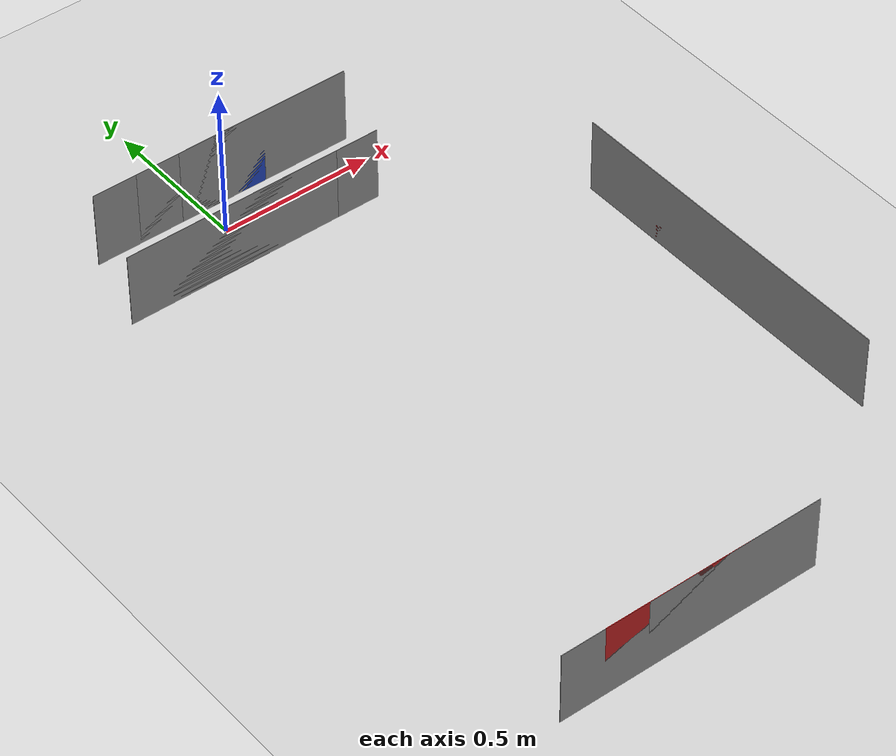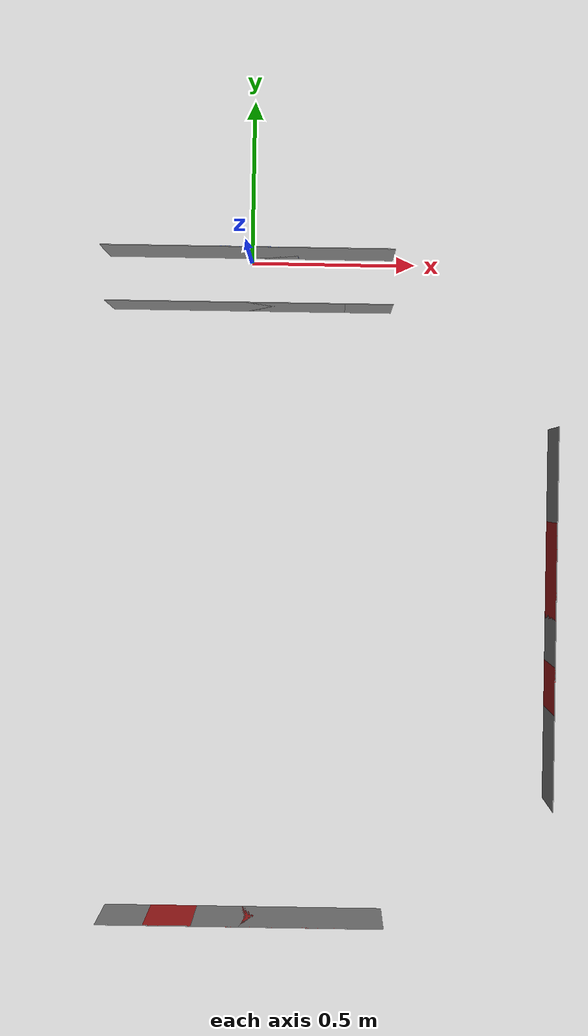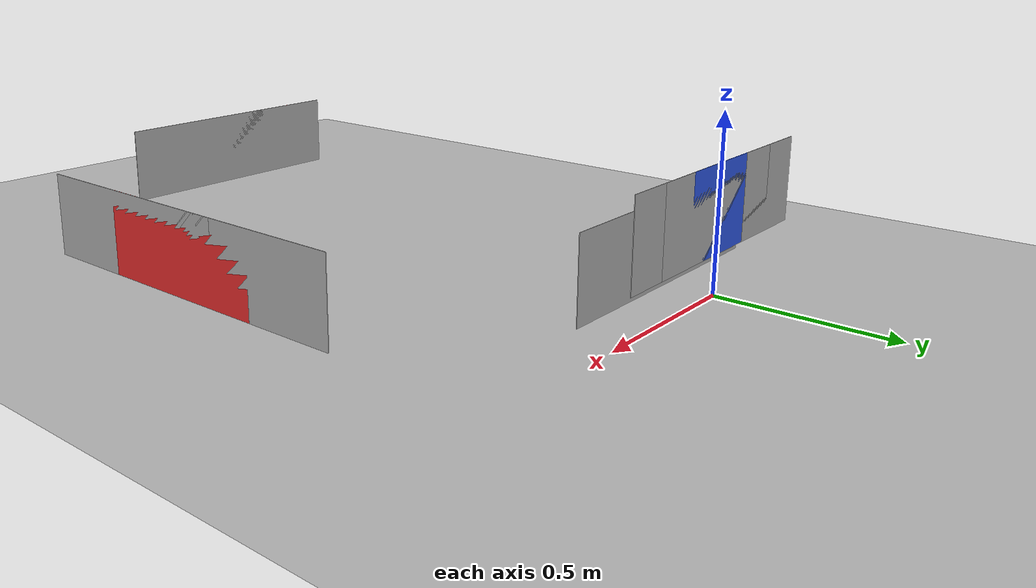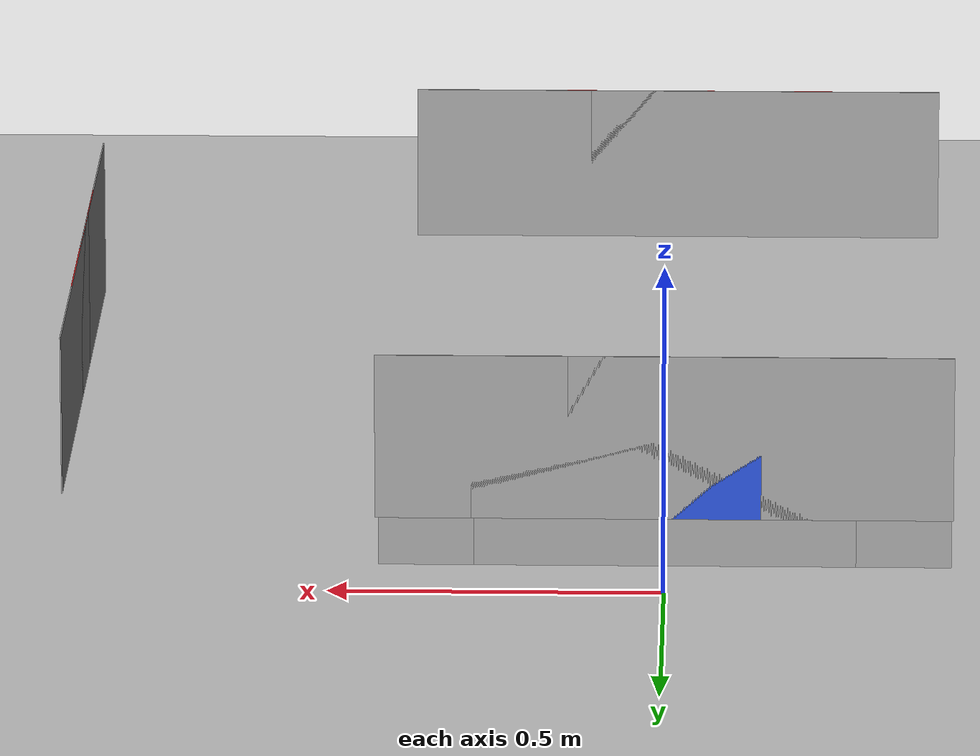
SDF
<sdf version="1.6">
 <world name="default">
  <light name="sun" type="directional">
   <pose>0 0 10 0 -0 0</pose>
   <diffuse>0.8 0.8 0.8 1</diffuse>
   <specular>0.2 0.2 0.2 1</specular>
   <attenuation>
    <range>1000</range>
    <constant>0.9</constant>
    <linear>0.01</linear>
    <quadratic>0.001</quadratic>
   </attenuation>
   <direction>-0.5 0.1 -0.9</direction>
   <spot><inner_angle>0</inner_angle><outer_angle>0</outer_angle><falloff>0</falloff></spot>
  </light>
  <model name="ground_plane">
   <static>1</static>
   <link name="link">
    <collision name="collision">
     <geometry><plane><normal>0 0 1</normal><size>100 100</size></plane></geometry>
     <surface><friction><ode><mu>100</mu><mu2>50</mu2></ode></friction></surface>
    </collision>
    <visual name="visual">
     <cast_shadows>0</cast_shadows>
     <geometry><plane><normal>0 0 1</normal><size>100 100</size></plane></geometry>
     <material>
      <script><uri>file://media/materials/scripts/gazebo.material</uri><name>Gazebo/Grey</name></script>
     </material>
    </visual>
   </link>
  </model>
  <gravity>0 0 -9.8</gravity>
  <magnetic_field>6e-06 2.3e-05 -4.2e-05</magnetic_field>
  <atmosphere type="adiabatic"/>
  <physics type="ode">
   <max_step_size>0.001</max_step_size>
   <real_time_factor>1</real_time_factor>
   <real_time_update_rate>1000</real_time_update_rate>
  </physics>
  <scene><ambient>0.4 0.4 0.4 1</ambient><background>0.7 0.7 0.7 1</background><shadows>1</shadows></scene>
  <spherical_coordinates>
   <surface_model>EARTH_WGS84</surface_model>
   <latitude_deg>0</latitude_deg>
   <longitude_deg>0</longitude_deg>
   <elevation>0</elevation>
   <heading_deg>0</heading_deg>
  </spherical_coordinates>
  <model name="Untitled">
   <link name="Wall_y_0_0">
    <collision name="Wall_y_0_0_Collision">
     <geometry><box><size>0.5714 0.002 .25</size></box></geometry>
     <pose>0 0 0.12 0 -0 0</pose>
    </collision>
    <visual name="Wall_y_0_0_Visual">
     <pose>0 0 0.12 0 -0 0</pose>
     <geometry><box><size>0.5714 0.002 .25</size></box></geometry>
     <material>
      <script><uri>file://media/materials/scripts/gazebo.material</uri><name>Gazebo/Grey</name></script>
      <ambient>1 1 1 1</ambient>
     </material>
     <meta><layer>0</layer></meta>
    </visual>
    <pose>0 0 0.12 0 -0 0</pose>
   </link>
   <link name="Wall_y_0_Door">
    <collision name="Wall_y_0_Door_Collision">
     <geometry><box><size>0.5714 0.002 .25</size></box></geometry>
     <pose>0 0 0.12 0 -0 0</pose>
    </collision>
    <visual name="Wall_y_0_Door_Visual">
     <pose>0 0 0.12 0 -0 0</pose>
     <geometry><box><size>0.5714 0.002 .25</size></box></geometry>
     <material>
      <script><uri>file://media/materials/scripts/gazebo.material</uri><name>Gazebo/Red</name></script>
      <ambient>1 1 1 1</ambient>
     </material>
     <meta><layer>0</layer></meta>
    </visual>
    <pose>0 0 0.12 0 -0 0</pose>
   </link>
   <link name="Wall_y_0_1">
    <collision name="Wall_y_0_1_Collision">
     <geometry><box><size>0.8571 0.002 .25</size></box></geometry>
     <pose>0 0 0.12 0 -0 0</pose>
    </collision>
    <visual name="Wall_y_0_1_Visual">
     <pose>0 0 0.12 0 -0 0</pose>
     <geometry><box><size>0.8571 0.002 .25</size></box></geometry>
     <material>
      <script><uri>file://media/materials/scripts/gazebo.material</uri><name>Gazebo/Grey</name></script>
      <ambient>1 1 1 1</ambient>
     </material>
     <meta><layer>0</layer></meta>
    </visual>
    <pose>0 0 0.12 0 -0 0</pose>
   </link>
   <link name="Wall_x_0_0">
    <collision name="Wall_x_0_0_Collision">
     <geometry><box><size>0.8571 0.002 .25</size></box></geometry>
     <pose>0 0 0.12 0 -0 0</pose>
    </collision>
    <visual name="Wall_x_0_0_Visual">
     <pose>0 0 0.12 0 -0 0</pose>
     <geometry><box><size>0.8571 0.002 .25</size></box></geometry>
     <material>
      <script><uri>file://media/materials/scripts/gazebo.material</uri><name>Gazebo/Grey</name></script>
      <ambient>1 1 1 1</ambient>
     </material>
     <meta><layer>0</layer></meta>
    </visual>
    <pose>-0 -1.9975 0 0 -0 0</pose>
   </link>
   <link name="Wall_x_0_Door">
    <collision name="Wall_x_0_Door_Collision">
     <geometry><box><size>0.5714 0.002 .25</size></box></geometry>
     <pose>0 0 0.12 0 -0 0</pose>
    </collision>
    <visual name="Wall_x_0_Door_Visual">
     <pose>0 0 0.12 0 -0 0</pose>
     <geometry><box><size>0.5714 0.002 .25</size></box></geometry>
     <material>
      <script><uri>file://media/materials/scripts/gazebo.material</uri><name>Gazebo/Red</name></script>
      <ambient>1 1 1 1</ambient>
     </material>
     <meta><layer>0</layer></meta>
    </visual>
    <pose>-0 -1.9975 0 0 -0 0</pose>
   </link>
   <link name="Wall_x_0_1">
    <collision name="Wall_x_0_1_Collision">
     <geometry><box><size>0.5714 0.002 .25</size></box></geometry>
     <pose>0 0 0.12 0 -0 0</pose>
    </collision>
    <visual name="Wall_x_0_1_Visual">
     <pose>0 0 0.12 0 -0 0</pose>
     <geometry><box><size>0.5714 0.002 .25</size></box></geometry>
     <material>
      <script><uri>file://media/materials/scripts/gazebo.material</uri><name>Gazebo/Grey</name></script>
      <ambient>1 1 1 1</ambient>
     </material>
     <meta><layer>0</layer></meta>
    </visual>
    <pose>-0 -1.9975 0 0 -0 0</pose>
   </link>
   <link name="Wall_y_7_0">
    <collision name="Wall_y_7_0_Collision">
     <geometry><box><size>1.1428 0.002 .25</size></box></geometry>
     <pose>0 0 0.12 0 -0 0</pose>
    </collision>
    <visual name="Wall_y_7_0_Visual">
     <pose>0 0 0.12 0 -0 0</pose>
     <geometry><box><size>1.1428 0.002 .25</size></box></geometry>
     <material>
      <script><uri>file://media/materials/scripts/gazebo.material</uri><name>Gazebo/Grey</name></script>
      <ambient>1 1 1 1</ambient>
     </material>
     <meta><layer>0</layer></meta>
    </visual>
    <pose>0.925 -1.0725 0 0 -0 1.5708</pose>
   </link>
   <link name="Wall_y_7_Door">
    <collision name="Wall_y_7_Door_Collision">
     <geometry><box><size>0.5714 0.002 .25</size></box></geometry>
     <pose>0 0 0.12 0 -0 0</pose>
    </collision>
    <visual name="Wall_y_7_Door_Visual">
     <pose>0 0 0.12 0 -0 0</pose>
     <geometry><box><size>0.5714 0.002 .25</size></box></geometry>
     <material>
      <script><uri>file://media/materials/scripts/gazebo.material</uri><name>Gazebo/Red</name></script>
      <ambient>1 1 1 1</ambient>
     </material>
     <meta><layer>0</layer></meta>
    </visual>
    <pose>0.925 -1.0725 0 0 -0 1.5708</pose>
   </link>
   <link name="Wall_y_7_1">
    <collision name="Wall_y_7_1_Collision">
     <geometry><box><size>0.2857 0.002 .25</size></box></geometry>
     <pose>0 0 0.12 0 -0 0</pose>
    </collision>
    <visual name="Wall_y_7_1_Visual">
     <pose>0 0 0.12 0 -0 0</pose>
     <geometry><box><size>0.2857 0.002 .25</size></box></geometry>
     <material>
      <script><uri>file://media/materials/scripts/gazebo.material</uri><name>Gazebo/Grey</name></script>
      <ambient>1 1 1 1</ambient>
     </material>
     <meta><layer>0</layer></meta>
    </visual>
    <pose>0.925 -1.0725 0 0 -0 1.5708</pose>
   </link>
   <link name="Wall_x_7_0">
    <collision name="Wall_x_7_0_Collision">
     <geometry><box><size>0.5714 0.002 .25</size></box></geometry>
     <pose>0 0 0.12 0 -0 0</pose>
    </collision>
    <visual name="Wall_x_7_0_Visual">
     <pose>0 0 0.12 0 -0 0</pose>
     <geometry><box><size>0.5714 0.002 .25</size></box></geometry>
     <material>
      <script><uri>file://media/materials/scripts/gazebo.material</uri><name>Gazebo/Grey</name></script>
      <ambient>1 1 1 1</ambient>
     </material>
     <meta><layer>0</layer></meta>
    </visual>
    <pose>-0 -0.1475 0 0 -0 3.14159</pose>
   </link>
   <link name="Wall_x_7_Door">
    <collision name="Wall_x_7_Door_Collision">
     <geometry><box><size>0.5714 0.002 .25</size></box></geometry>
     <pose>0 0 0.12 0 -0 0</pose>
    </collision>
    <visual name="Wall_x_7_Door_Visual">
     <pose>0 0 0.12 0 -0 0</pose>
     <geometry><box><size>0.5714 0.002 .25</size></box></geometry>
     <material>
      <script><uri>file://media/materials/scripts/gazebo.material</uri><name>Gazebo/Red</name></script>
      <ambient>1 1 1 1</ambient>
     </material>
     <meta><layer>0</layer></meta>
    </visual>
    <pose>-0 -0.1475 0 0 -0 3.14159</pose>
   </link>
   <link name="Wall_x_7_1">
    <collision name="Wall_x_7_1_Collision">
     <geometry><box><size>0.8571 0.002 .25</size></box></geometry>
     <pose>0 0 0.12 0 -0 0</pose>
    </collision>
    <visual name="Wall_x_7_1_Visual">
     <pose>0 0 0.12 0 -0 0</pose>
     <geometry><box><size>0.8571 0.002 .25</size></box></geometry>
     <material>
      <script><uri>file://media/materials/scripts/gazebo.material</uri><name>Gazebo/Grey</name></script>
      <ambient>1 1 1 1</ambient>
     </material>
     <meta><layer>0</layer></meta>
    </visual>
    <pose>-0 -0.1475 0 0 -0 3.14159</pose>
   </link>
   <link name="Wall_y_1_0">
    <collision name="Wall_y_1_0_Collision">
     <geometry><box><size>0.2857 0.002 .25</size></box></geometry>
     <pose>0 0 0.12 0 -0 0</pose>
    </collision>
    <visual name="Wall_y_1_0_Visual">
     <pose>0 0 0.12 0 -0 0</pose>
     <geometry><box><size>0.2857 0.002 .25</size></box></geometry>
     <material>
      <script><uri>file://media/materials/scripts/gazebo.material</uri><name>Gazebo/Grey</name></script>
      <ambient>1 1 1 1</ambient>
     </material>
     <meta><layer>0</layer></meta>
    </visual>
    <pose>0 0 0.12 0 -0 0</pose>
   </link>
   <link name="Wall_y_1_1">
    <collision name="Wall_y_1_1_Collision">
     <geometry><box><size>0.2857 0.002 .25</size></box></geometry>
     <pose>0 0 0.12 0 -0 0</pose>
    </collision>
    <visual name="Wall_y_1_1_Visual">
     <pose>0 0 0.12 0 -0 0</pose>
     <geometry><box><size>0.2857 0.002 .25</size></box></geometry>
     <material>
      <script><uri>file://media/materials/scripts/gazebo.material</uri><name>Gazebo/Grey</name></script>
      <ambient>1 1 1 1</ambient>
     </material>
     <meta><layer>0</layer></meta>
    </visual>
    <pose>0 0 0.12 0 -0 0</pose>
   </link>
   <link name="Wall_y_2_0">
    <collision name="Wall_y_2_0_Collision">
     <geometry><box><size>0.2857 0.002 .25</size></box></geometry>
     <pose>0 0 0.12 0 -0 0</pose>
    </collision>
    <visual name="Wall_y_2_0_Visual">
     <pose>0 0 0.12 0 -0 0</pose>
     <geometry><box><size>0.2857 0.002 .25</size></box></geometry>
     <material>
      <script><uri>file://media/materials/scripts/gazebo.material</uri><name>Gazebo/Grey</name></script>
      <ambient>1 1 1 1</ambient>
     </material>
     <meta><layer>0</layer></meta>
    </visual>
    <pose>0 0 0.12 0 -0 0</pose>
   </link>
   <link name="Wall_y_2_1">
    <collision name="Wall_y_2_1_Collision">
     <geometry><box><size>0.2857 0.002 .25</size></box></geometry>
     <pose>0 0 0.12 0 -0 0</pose>
    </collision>
    <visual name="Wall_y_2_1_Visual">
     <pose>0 0 0.12 0 -0 0</pose>
     <geometry><box><size>0.2857 0.002 .25</size></box></geometry>
     <material>
      <script><uri>file://media/materials/scripts/gazebo.material</uri><name>Gazebo/Grey</name></script>
      <ambient>1 1 1 1</ambient>
     </material>
     <meta><layer>0</layer></meta>
    </visual>
    <pose>0 0 0.12 0 -0 0</pose>
   </link>
   <link name="Wall_y_3_0">
    <collision name="Wall_y_3_0_Collision">
     <geometry><box><size>0.5714 0.002 .25</size></box></geometry>
     <pose>0 0 0.12 0 -0 0</pose>
    </collision>
    <visual name="Wall_y_3_0_Visual">
     <pose>0 0 0.12 0 -0 0</pose>
     <geometry><box><size>0.5714 0.002 .25</size></box></geometry>
     <material>
      <script><uri>file://media/materials/scripts/gazebo.material</uri><name>Gazebo/Grey</name></script>
      <ambient>1 1 1 1</ambient>
     </material>
     <meta><layer>0</layer></meta>
    </visual>
    <pose>0 0 0.12 0 -0 0</pose>
   </link>
   <link name="Wall_y_4_0">
    <collision name="Wall_y_4_0_Collision">
     <geometry><box><size>0.2857 0.002 .25</size></box></geometry>
     <pose>0 0 0.12 0 -0 0</pose>
    </collision>
    <visual name="Wall_y_4_0_Visual">
     <pose>0 0 0.12 0 -0 0</pose>
     <geometry><box><size>0.2857 0.002 .25</size></box></geometry>
     <material>
      <script><uri>file://media/materials/scripts/gazebo.material</uri><name>Gazebo/Grey</name></script>
      <ambient>1 1 1 1</ambient>
     </material>
     <meta><layer>0</layer></meta>
    </visual>
    <pose>0 0 0.12 0 -0 0</pose>
   </link>
   <link name="Wall_y_4_Door">
    <collision name="Wall_y_4_Door_Collision">
     <geometry><box><size>0.2875 0.002 .25</size></box></geometry>
     <pose>0 0 0.12 0 -0 0</pose>
    </collision>
    <visual name="Wall_y_4_Door_Visual">
     <pose>0 0 0.12 0 -0 0</pose>
     <geometry><box><size>0.2875 0.002 .25</size></box></geometry>
     <material>
      <script><uri>file://media/materials/scripts/gazebo.material</uri><name>Gazebo/Blue</name></script>
      <ambient>1 1 1 1</ambient>
     </material>
     <meta><layer>0</layer></meta>
    </visual>
    <pose>0 0 0.12 0 -0 0</pose>
   </link>
   <link name="Wall_y_4_1">
    <collision name="Wall_y_4_1_Collision">
     <geometry><box><size>0.2857 0.002 .25</size></box></geometry>
     <pose>0 0 0.12 0 -0 0</pose>
    </collision>
    <visual name="Wall_y_4_1_Visual">
     <pose>0 0 0.12 0 -0 0</pose>
     <geometry><box><size>0.2857 0.002 .25</size></box></geometry>
     <material>
      <script><uri>file://media/materials/scripts/gazebo.material</uri><name>Gazebo/Grey</name></script>
      <ambient>1 1 1 1</ambient>
     </material>
     <meta><layer>0</layer></meta>
    </visual>
    <pose>0 0 0.12 0 -0 0</pose>
   </link>
   <link name="Wall_y_5_1">
    <collision name="Wall_y_5_1_Collision">
     <geometry><box><size>0.2857 0.002 .25</size></box></geometry>
     <pose>0 0 0.12 0 -0 0</pose>
    </collision>
    <visual name="Wall_y_5_1_Visual">
     <pose>0 0 0.12 0 -0 0</pose>
     <geometry><box><size>0.2857 0.002 .25</size></box></geometry>
     <material>
      <script><uri>file://media/materials/scripts/gazebo.material</uri><name>Gazebo/Grey</name></script>
      <ambient>1 1 1 1</ambient>
     </material>
     <meta><layer>0</layer></meta>
    </visual>
    <pose>0 0 0.12 0 -0 0</pose>
   </link>
   <link name="Wall_x_1_0">
    <collision name="Wall_x_1_0_Collision">
     <geometry><box><size>0.2857 0.002 .25</size></box></geometry>
     <pose>0 0 0.12 0 -0 0</pose>
    </collision>
    <visual name="Wall_x_1_0_Visual">
     <pose>0 0 0.12 0 -0 0</pose>
     <geometry><box><size>0.2857 0.002 .25</size></box></geometry>
     <material>
      <script><uri>file://media/materials/scripts/gazebo.material</uri><name>Gazebo/Grey</name></script>
      <ambient>1 1 1 1</ambient>
     </material>
     <meta><layer>0</layer></meta>
    </visual>
    <pose>-0 -1.9975 0 0 -0 0</pose>
   </link>
   <link name="Wall_x_1_1">
    <collision name="Wall_x_1_1_Collision">
     <geometry><box><size>0.2857 0.002 .25</size></box></geometry>
     <pose>0 0 0.12 0 -0 0</pose>
    </collision>
    <visual name="Wall_x_1_1_Visual">
     <pose>0 0 0.12 0 -0 0</pose>
     <geometry><box><size>0.2857 0.002 .25</size></box></geometry>
     <material>
      <script><uri>file://media/materials/scripts/gazebo.material</uri><name>Gazebo/Grey</name></script>
      <ambient>1 1 1 1</ambient>
     </material>
     <meta><layer>0</layer></meta>
    </visual>
    <pose>-0 -1.9975 0 0 -0 0</pose>
   </link>
   <link name="Wall_x_2_0">
    <collision name="Wall_x_2_0_Collision">
     <geometry><box><size>0.2857 0.002 .25</size></box></geometry>
     <pose>0 0 0.12 0 -0 0</pose>
    </collision>
    <visual name="Wall_x_2_0_Visual">
     <pose>0 0 0.12 0 -0 0</pose>
     <geometry><box><size>0.2857 0.002 .25</size></box></geometry>
     <material>
      <script><uri>file://media/materials/scripts/gazebo.material</uri><name>Gazebo/Grey</name></script>
      <ambient>1 1 1 1</ambient>
     </material>
     <meta><layer>0</layer></meta>
    </visual>
    <pose>-0 -1.9975 0 0 -0 0</pose>
   </link>
   <link name="Wall_x_2_1">
    <collision name="Wall_x_2_1_Collision">
     <geometry><box><size>0.2857 0.002 .25</size></box></geometry>
     <pose>0 0 0.12 0 -0 0</pose>
    </collision>
    <visual name="Wall_x_2_1_Visual">
     <pose>0 0 0.12 0 -0 0</pose>
     <geometry><box><size>0.2857 0.002 .25</size></box></geometry>
     <material>
      <script><uri>file://media/materials/scripts/gazebo.material</uri><name>Gazebo/Grey</name></script>
      <ambient>1 1 1 1</ambient>
     </material>
     <meta><layer>0</layer></meta>
    </visual>
    <pose>-0 -1.9975 0 0 -0 0</pose>
   </link>
   <link name="Wall_x_3_Door">
    <collision name="Wall_x_3_Door_Collision">
     <geometry><box><size>0.2857 0.002 .25</size></box></geometry>
     <pose>0 0 0.12 0 -0 0</pose>
    </collision>
    <visual name="Wall_x_3_DoorVisual">
     <pose>0 0 0.12 0 -0 0</pose>
     <geometry><box><size>0.2857 0.002 .25</size></box></geometry>
     <material>
      <script><uri>file://media/materials/scripts/gazebo.material</uri><name>Gazebo/Blue</name></script>
      <ambient>1 1 1 1</ambient>
     </material>
     <meta><layer>0</layer></meta>
    </visual>
    <pose>-0 -1.9975 0 0 -0 0</pose>
   </link>
   <link name="Wall_x_3_0">
    <collision name="Wall_x_3_0_Collision">
     <geometry><box><size>0.2857 0.002 .25</size></box></geometry>
     <pose>0 0 0.12 0 -0 0</pose>
    </collision>
    <visual name="Wall_x_3_0_Visual">
     <pose>0 0 0.12 0 -0 0</pose>
     <geometry><box><size>0.2857 0.002 .25</size></box></geometry>
     <material>
      <script><uri>file://media/materials/scripts/gazebo.material</uri><name>Gazebo/Blue</name></script>
      <ambient>1 1 1 1</ambient>
     </material>
     <meta><layer>0</layer></meta>
    </visual>
    <pose>-0 -1.9975 0 0 -0 0</pose>
   </link>
   <link name="Wall_x_4_0">
    <collision name="Wall_x_4_0_Collision">
     <geometry><box><size>0.2857 0.002 .25</size></box></geometry>
     <pose>0 0 0.12 0 -0 0</pose>
    </collision>
    <visual name="Wall_x_4_0_Visual">
     <pose>0 0 0.12 0 -0 0</pose>
     <geometry><box><size>0.2857 0.002 .25</size></box></geometry>
     <material>
      <script><uri>file://media/materials/scripts/gazebo.material</uri><name>Gazebo/Grey</name></script>
      <ambient>1 1 1 1</ambient>
     </material>
     <meta><layer>0</layer></meta>
    </visual>
    <pose>-0 -1.9975 0 0 -0 0</pose>
   </link>
   <link name="Wall_x_5_0">
    <collision name="Wall_x_5_0_Collision">
     <geometry><box><size>0.2857 0.002 .25</size></box></geometry>
     <pose>0 0 0.12 0 -0 0</pose>
    </collision>
    <visual name="Wall_x_5_0_Visual">
     <pose>0 0 0.12 0 -0 0</pose>
     <geometry><box><size>0.2857 0.002 .25</size></box></geometry>
     <material>
      <script><uri>file://media/materials/scripts/gazebo.material</uri><name>Gazebo/Grey</name></script>
      <ambient>1 1 1 1</ambient>
     </material>
     <meta><layer>0</layer></meta>
    </visual>
    <pose>-0 -1.9975 0 0 -0 0</pose>
   </link>
   <static>1</static>
  </model>
 </world>
</sdf>
